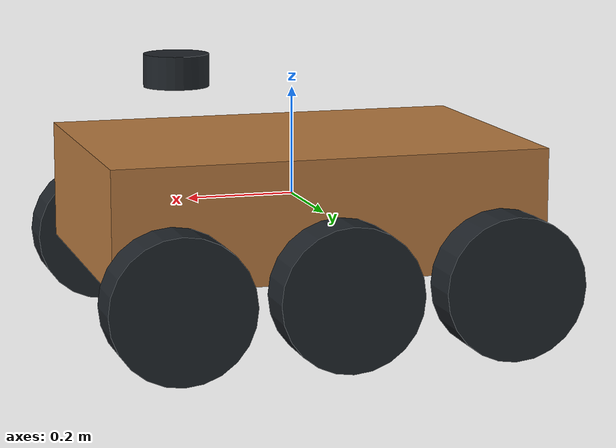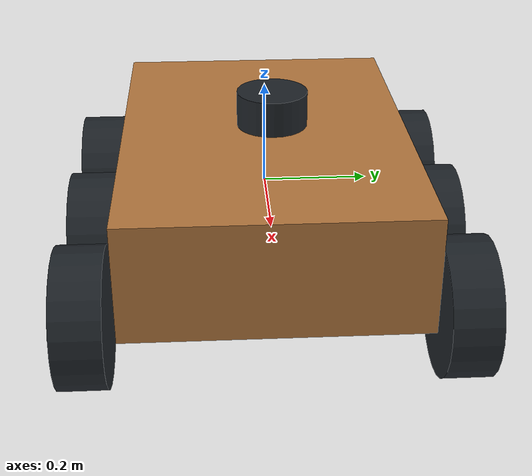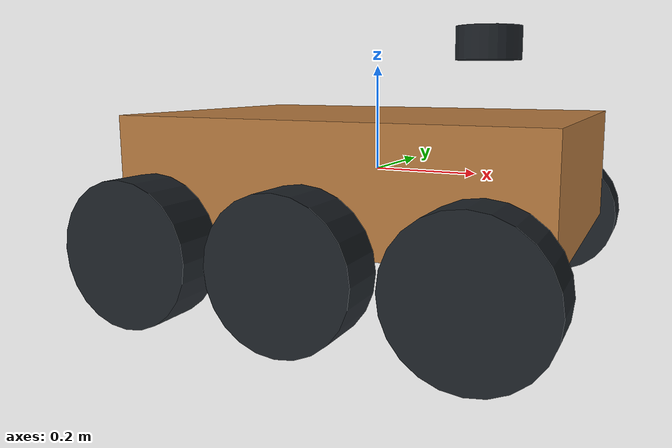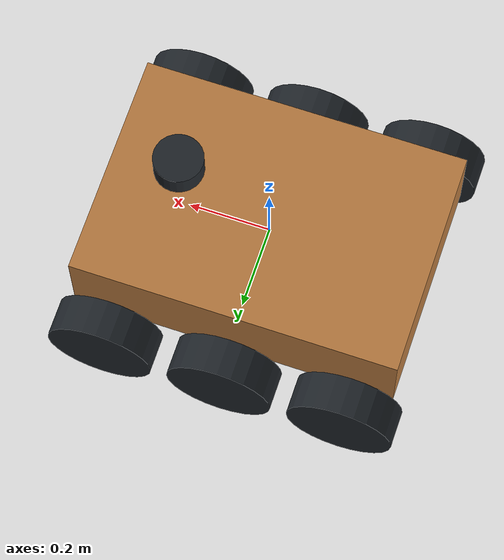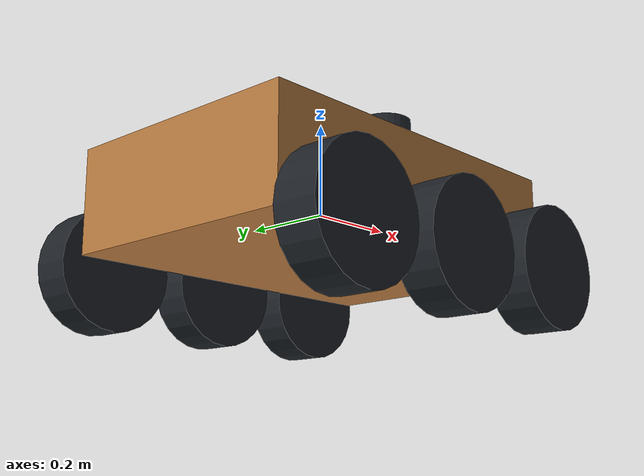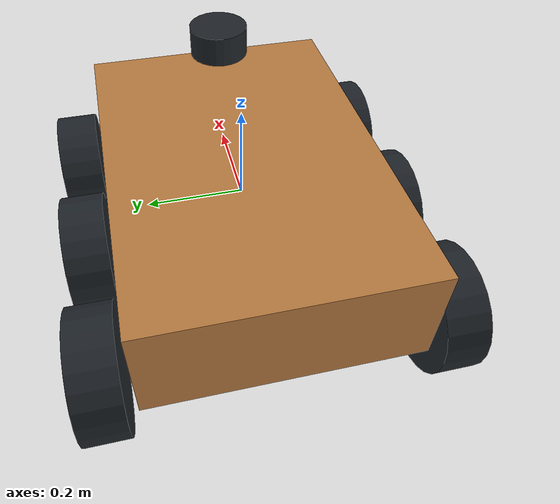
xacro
<?xml version="1.0"?>
<robot xmlns:xacro="http://www.ros.org/wiki/xacro" name="aachen_rover">
  <!-- SI units. Primitive approximation, not a CAD-validated suspension model. -->
  <material name="sand"><color rgba="0.72 0.48 0.25 1"/></material>
  <material name="dark"><color rgba="0.12 0.14 0.16 1"/></material>
  <link name="base_link">
    <inertial><mass value="12"/><inertia ixx="0.37" ixy="0" ixz="0" iyy="0.69" iyz="0" izz="0.98"/></inertial>
    <visual><geometry><box size="0.8 0.55 0.22"/></geometry><material name="sand"/></visual>
    <collision><geometry><box size="0.8 0.55 0.22"/></geometry></collision>
  </link>
  <xacro:macro name="wheel" params="name x y">
    <link name="${name}_link">
      <inertial><mass value="0.8"/><inertia ixx="0.004" ixy="0" ixz="0" iyy="0.007" iyz="0" izz="0.004"/></inertial>
      <visual><origin rpy="1.57079632679 0 0"/><geometry><cylinder radius="0.13" length="0.09"/></geometry><material name="dark"/></visual>
      <collision><origin rpy="1.57079632679 0 0"/><geometry><cylinder radius="0.13" length="0.09"/></geometry></collision>
    </link>
    <joint name="${name}_joint" type="continuous">
      <parent link="base_link"/><child link="${name}_link"/>
      <origin xyz="${x} ${y} -0.12"/><axis xyz="0 1 0"/>
      <dynamics damping="0.02" friction="0"/>
    </joint>
    <gazebo reference="${name}_link"><mu1>0.8</mu1><mu2>0.8</mu2></gazebo>
  </xacro:macro>
  <xacro:wheel name="front_left" x="0.30" y="0.34"/>
  <xacro:wheel name="middle_left" x="0" y="0.34"/>
  <xacro:wheel name="rear_left" x="-0.30" y="0.34"/>
  <xacro:wheel name="front_right" x="0.30" y="-0.34"/>
  <xacro:wheel name="middle_right" x="0" y="-0.34"/>
  <xacro:wheel name="rear_right" x="-0.30" y="-0.34"/>
  <link name="lidar_link">
    <inertial><mass value="0.2"/><inertia ixx="0.001" ixy="0" ixz="0" iyy="0.001" iyz="0" izz="0.001"/></inertial>
    <visual><geometry><cylinder radius="0.06" length="0.06"/></geometry><material name="dark"/></visual>
    <collision><geometry><cylinder radius="0.06" length="0.06"/></geometry></collision>
  </link>
  <joint name="lidar_joint" type="fixed"><parent link="base_link"/><child link="lidar_link"/><origin xyz="0.22 0 0.24"/></joint>
  <gazebo reference="lidar_joint"><preserveFixedJoint>true</preserveFixedJoint></gazebo>
  <gazebo reference="lidar_link">
    <sensor name="lidar" type="gpu_lidar">
      <topic>/scan</topic><gz_frame_id>lidar_link</gz_frame_id>
      <update_rate>10</update_rate><always_on>true</always_on><visualize>true</visualize>
      <lidar><scan><horizontal><samples>720</samples><resolution>1</resolution><min_angle>-3.14159265359</min_angle><max_angle>3.14159265359</max_angle></horizontal></scan>
        <range><min>0.15</min><max>20</max><resolution>0.01</resolution></range>
      </lidar>
    </sensor>
  </gazebo>
  <gazebo>
    <plugin filename="gz-sim-diff-drive-system" name="gz::sim::systems::DiffDrive">
      <left_joint>front_left_joint</left_joint><left_joint>middle_left_joint</left_joint><left_joint>rear_left_joint</left_joint>
      <right_joint>front_right_joint</right_joint><right_joint>middle_right_joint</right_joint><right_joint>rear_right_joint</right_joint>
      <wheel_separation>0.68</wheel_separation><wheel_radius>0.13</wheel_radius>
      <topic>/cmd_vel</topic><odom_topic>/odom</odom_topic><tf_topic>/tf</tf_topic>
      <frame_id>odom</frame_id><child_frame_id>base_link</child_frame_id><odom_publish_frequency>30</odom_publish_frequency>
      <max_linear_velocity>0.6</max_linear_velocity><min_linear_velocity>-0.6</min_linear_velocity>
      <max_angular_velocity>1.2</max_angular_velocity><min_angular_velocity>-1.2</min_angular_velocity>
    </plugin>
    <plugin filename="gz-sim-joint-state-publisher-system" name="gz::sim::systems::JointStatePublisher"><topic>/joint_states</topic></plugin>
  </gazebo>
</robot>
